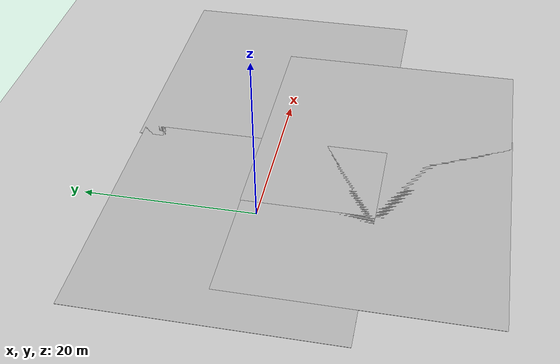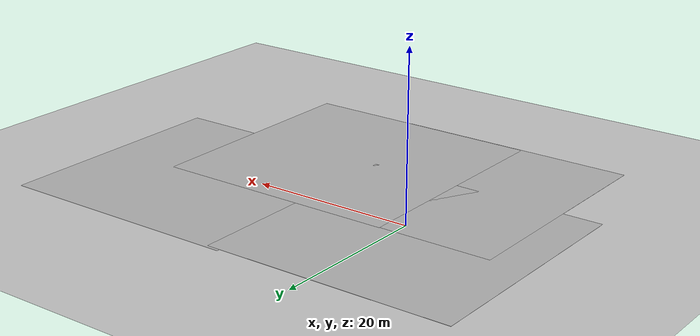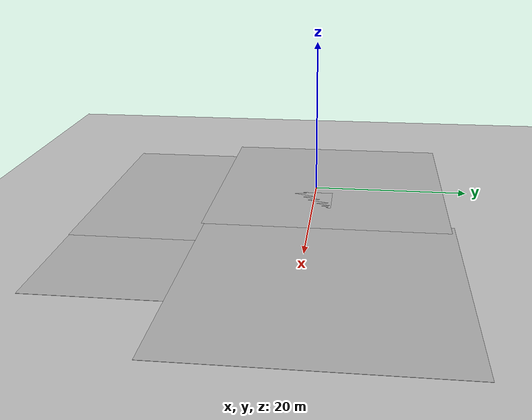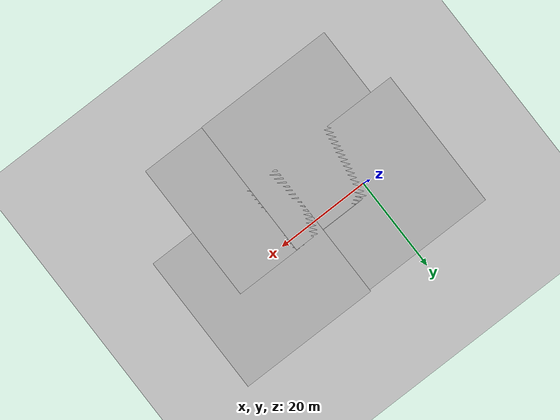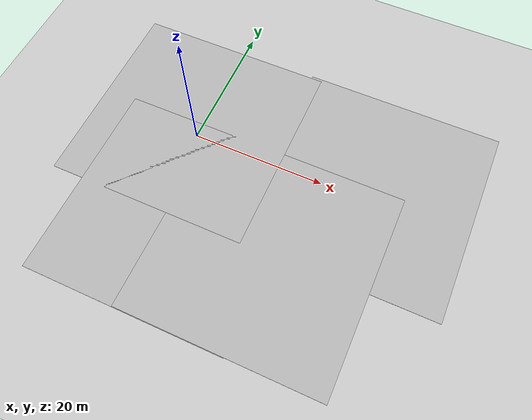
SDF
<sdf version="1.6">
 <world name="default">
  <plugin name="disable_physics" filename="libdisable_physics.so"/>
  <model name="ground_plane">
   <static>1</static>
   <link name="link">
    <collision name="collision">
     <geometry><plane><normal>0 0 1</normal><size>100 100</size></plane></geometry>
     <surface><friction><ode><mu>100</mu><mu2>50</mu2></ode></friction></surface>
    </collision>
    <visual name="visual">
     <cast_shadows>0</cast_shadows>
     <geometry><plane><normal>0 0 1</normal><size>100 100</size></plane></geometry>
     <material>
      <script><uri>file://media/materials/scripts/gazebo.material</uri><name>Gazebo/Grey</name></script>
     </material>
    </visual>
   </link>
  </model>
  <light name="sun" type="directional">
   <pose>0 0 10 0 -0 0</pose>
   <diffuse>0.8 0.8 0.8 1</diffuse>
   <specular>0.1 0.1 0.1 1</specular>
   <attenuation>
    <range>1000</range>
    <constant>0.9</constant>
    <linear>0.01</linear>
    <quadratic>0.001</quadratic>
   </attenuation>
   <direction>-0.5 0.5 -1</direction>
  </light>
  <gravity>0 0 -9.8</gravity>
  <magnetic_field>6e-06 2.3e-05 -4.2e-05</magnetic_field>
  <atmosphere type="adiabatic"/>
  <physics name="default_physics" default="0" type="ode">
   <ode>
    <solver>
     <type>quick</type>
     <iters>10</iters>
     <sor>1.3</sor>
     <use_dynamic_moi_rescaling>0</use_dynamic_moi_rescaling>
    </solver>
    <constraints>
     <cfm>0</cfm>
     <erp>0.2</erp>
     <contact_max_correcting_vel>100</contact_max_correcting_vel>
     <contact_surface_layer>0.001</contact_surface_layer>
    </constraints>
   </ode>
   <max_step_size>0.004</max_step_size>
   <real_time_factor>1</real_time_factor>
   <real_time_update_rate>250</real_time_update_rate>
  </physics>
  <scene><ambient>0.4 0.4 0.4 1</ambient><background>0.7 0.7 0.7 1</background><shadows>1</shadows></scene>
  <spherical_coordinates>
   <surface_model>EARTH_WGS84</surface_model>
   <latitude_deg>0</latitude_deg>
   <longitude_deg>0</longitude_deg>
   <elevation>0</elevation>
   <heading_deg>0</heading_deg>
  </spherical_coordinates>
  <model name="ISCAS_groundplane">
   <static>1</static>
   <link name="link">
    <collision name="collision">
     <geometry><plane><normal>0 0 1</normal><size>30 30</size></plane></geometry>
     <surface><friction><ode><mu>100</mu><mu2>50</mu2></ode></friction></surface>
    </collision>
    <visual name="visual">
     <cast_shadows>0</cast_shadows>
     <geometry><plane><normal>0 0 1</normal><size>30 30</size></plane></geometry>
     <material>
      <script>
       <uri>model://ISCAS_groundplane/materials/scripts</uri>
       <uri>model://ISCAS_groundplane/materials/textures</uri>
       <name>ISCAS_groundplane/Image</name>
      </script>
     </material>
    </visual>
   </link>
   <pose>-1.67567 1.94093 0.05 0 -0 0</pose>
  </model>
  <model name="ISCAS_groundplane_2">
   <static>1</static>
   <link name="link">
    <collision name="collision">
     <geometry><plane><normal>0 0 1</normal><size>30 30</size></plane></geometry>
     <surface><friction><ode><mu>100</mu><mu2>50</mu2></ode></friction></surface>
    </collision>
    <visual name="visual">
     <cast_shadows>0</cast_shadows>
     <geometry><plane><normal>0 0 1</normal><size>30 30</size></plane></geometry>
     <material>
      <script>
       <uri>model://ISCAS_groundplane/materials/scripts</uri>
       <uri>model://ISCAS_groundplane/materials/textures</uri>
       <name>ISCAS_groundplane/Image</name>
      </script>
     </material>
    </visual>
   </link>
   <pose>16.8831 -12.6975 0.05 0 -0 0</pose>
  </model>
  <model name="ISCAS_groundplane_0">
   <static>1</static>
   <link name="link">
    <collision name="collision">
     <geometry><plane><normal>0 0 1</normal><size>30 30</size></plane></geometry>
     <surface><friction><ode><mu>100</mu><mu2>50</mu2></ode></friction></surface>
    </collision>
    <visual name="visual">
     <cast_shadows>0</cast_shadows>
     <geometry><plane><normal>0 0 1</normal><size>30 30</size></plane></geometry>
     <material>
      <script>
       <uri>model://ISCAS_groundplane/materials/scripts</uri>
       <uri>model://ISCAS_groundplane/materials/textures</uri>
       <name>ISCAS_groundplane/Image</name>
      </script>
     </material>
    </visual>
   </link>
   <pose>26.656 2.31744 0.05 0 -0 0</pose>
  </model>
  <model name="ISCAS_groundplane_1">
   <static>1</static>
   <link name="link">
    <collision name="collision">
     <geometry><plane><normal>0 0 1</normal><size>30 30</size></plane></geometry>
     <surface><friction><ode><mu>100</mu><mu2>50</mu2></ode></friction></surface>
    </collision>
    <visual name="visual">
     <cast_shadows>0</cast_shadows>
     <geometry><plane><normal>0 0 1</normal><size>30 30</size></plane></geometry>
     <material>
      <script>
       <uri>model://ISCAS_groundplane/materials/scripts</uri>
       <uri>model://ISCAS_groundplane/materials/textures</uri>
       <name>ISCAS_groundplane/Image</name>
      </script>
     </material>
    </visual>
   </link>
   <pose>3.12619 -12.7789 0.05 0 -0 0</pose>
  </model>
 </world>
</sdf>
